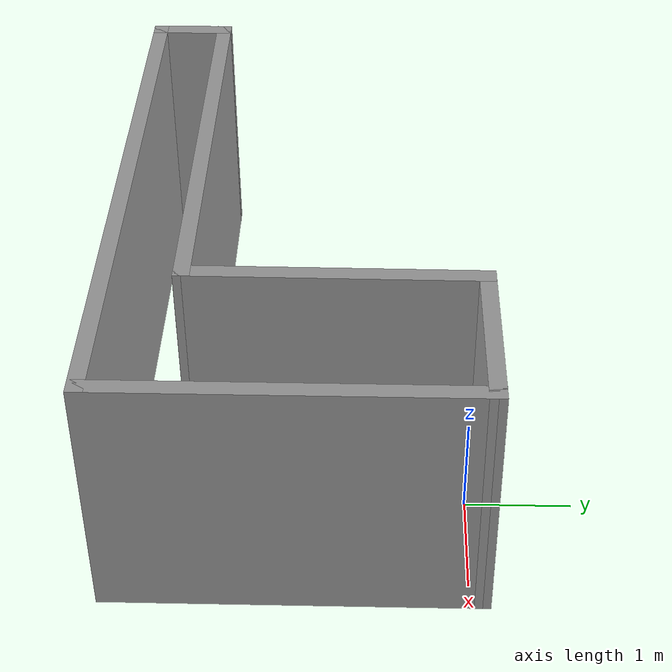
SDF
<?xml version='1.0'?>
<sdf version='1.6'>
  <model name='Map10'>
    <pose frame=''>-1.69242 -1.55227 0 0 -0 0</pose>
    <link name='Wall_0'>
      <collision name='Wall_0_Collision'>
        <geometry>
          <box>
            <size>0.82915 0.15 2.5</size>
          </box>
        </geometry>
        <pose frame=''>0 0 1.25 0 -0 0</pose>
      </collision>
      <visual name='Wall_0_Visual'>
        <pose frame=''>0 0 1.25 0 -0 0</pose>
        <geometry>
          <box>
            <size>0.82915 0.15 2.5</size>
          </box>
        </geometry>
        <material>
          <script>
            <uri>file://media/materials/scripts/gazebo.material</uri>
            <name>Gazebo/Grey</name>
          </script>
          <ambient>1 1 1 1</ambient>
        </material>
      </visual>
      <pose frame=''>-2.86784 -1.32879 0 0 0 -1.55791</pose>
    </link>
    <link name='Wall_1'>
      <collision name='Wall_1_Collision'>
        <geometry>
          <box>
            <size>5.88589 0.15 2.5</size>
          </box>
        </geometry>
        <pose frame=''>0 0 1.25 0 -0 0</pose>
      </collision>
      <visual name='Wall_1_Visual'>
        <pose frame=''>0 0 1.25 0 -0 0</pose>
        <geometry>
          <box>
            <size>5.88589 0.15 2.5</size>
          </box>
        </geometry>
        <material>
          <script>
            <uri>file://media/materials/scripts/gazebo.material</uri>
            <name>Gazebo/Grey</name>
          </script>
          <ambient>1 1 1 1</ambient>
        </material>
      </visual>
      <pose frame=''>0.004473 -1.66815 0 0 -0 0</pose>
    </link>
    <link name='Wall_2'>
      <collision name='Wall_2_Collision'>
        <geometry>
          <box>
            <size>3.48668 0.15 2.5</size>
          </box>
        </geometry>
        <pose frame=''>0 0 1.25 0 -0 0</pose>
      </collision>
      <visual name='Wall_2_Visual'>
        <pose frame=''>0 0 1.25 0 -0 0</pose>
        <geometry>
          <box>
            <size>3.48668 0.15 2.5</size>
          </box>
        </geometry>
        <material>
          <script>
            <uri>file://media/materials/scripts/gazebo.material</uri>
            <name>Gazebo/Grey</name>
          </script>
          <ambient>1 1 1 1</ambient>
        </material>
      </visual>
      <pose frame=''>2.87242 0.00019 0 0 -0 1.5708</pose>
    </link>
    <link name='Wall_3'>
      <collision name='Wall_3_Collision'>
        <geometry>
          <box>
            <size>1.63507 0.15 2.5</size>
          </box>
        </geometry>
        <pose frame=''>0 0 1.25 0 -0 0</pose>
      </collision>
      <visual name='Wall_3_Visual'>
        <pose frame=''>0 0 1.25 0 -0 0</pose>
        <geometry>
          <box>
            <size>1.63507 0.15 2.5</size>
          </box>
        </geometry>
        <material>
          <script>
            <uri>file://media/materials/scripts/gazebo.material</uri>
            <name>Gazebo/Grey</name>
          </script>
          <ambient>1 1 1 1</ambient>
        </material>
      </visual>
      <pose frame=''>2.12992 1.66092 0 0 0 -3.13135</pose>
    </link>
    <link name='Wall_4'>
      <collision name='Wall_4_Collision'>
        <geometry>
          <box>
            <size>2.79314 0.15 2.5</size>
          </box>
        </geometry>
        <pose frame=''>0 0 1.25 0 -0 0</pose>
      </collision>
      <visual name='Wall_4_Visual'>
        <pose frame=''>0 0 1.25 0 -0 0</pose>
        <geometry>
          <box>
            <size>2.79314 0.15 2.5</size>
          </box>
        </geometry>
        <material>
          <script>
            <uri>file://media/materials/scripts/gazebo.material</uri>
            <name>Gazebo/Grey</name>
          </script>
          <ambient>1 1 1 1</ambient>
        </material>
      </visual>
      <pose frame=''>1.37982 0.331949 0 0 0 -1.57655</pose>
    </link>
    <link name='Wall_5'>
      <collision name='Wall_5_Collision'>
        <geometry>
          <box>
            <size>4.39443 0.15 2.5</size>
          </box>
        </geometry>
        <pose frame=''>0 0 1.25 0 -0 0</pose>
      </collision>
      <visual name='Wall_5_Visual'>
        <pose frame=''>0 0 1.25 0 -0 0</pose>
        <geometry>
          <box>
            <size>4.39443 0.15 2.5</size>
          </box>
        </geometry>
        <material>
          <script>
            <uri>file://media/materials/scripts/gazebo.material</uri>
            <name>Gazebo/Grey</name>
          </script>
          <ambient>1 1 1 1</ambient>
        </material>
      </visual>
      <pose frame=''>-0.75 -0.989423 0 0 -0 3.14159</pose>
    </link>
    <static>1</static>
  </model>
</sdf>
